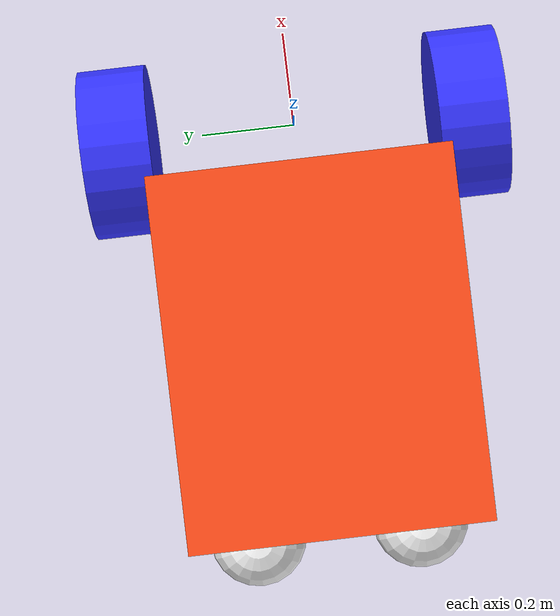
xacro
<?xml version="1.0"?>
<robot xmlns:xacro="http://www.ros.org/wiki/xacro" >

    <xacro:include filename="my_inertial_macros.xacro"/>

    <xacro:property name="chassis_length" value="0.80"/>
    <xacro:property name="chassis_width" value="0.65"/>
    <xacro:property name="chassis_height" value="0.31"/>
    <xacro:property name="chassis_mass" value="45.0"/>

    <xacro:property name="wheel_radius" value="0.19"/>
    <xacro:property name="wheel_thickness" value="0.15"/>
    <xacro:property name="wheel_mass" value="3.17"/>
    <xacro:property name="wheel_offset_x" value="0"/>
    <xacro:property name="wheel_offset_y" value="0.39"/>
    <xacro:property name="wheel_offset_z" value="0.16"/>

    <xacro:property name="caster_wheel_radius" value="0.11"/>
    <xacro:property name="caster_wheel_mass" value="1.5965"/>
    <xacro:property name="caster_wheel_offset_x" value="0.91"/>
    <xacro:property name="caster_wheel_offset_y" value="0.1875"/>
    <xacro:property name="caster_wheel_offset_z" value="0.24"/>

    <!-- UBAH BAGIAN BAWAH SESUAI DENGAN UPDATE PROPERTIES -->

    <material name="white">
        <color rgba="1 1 1 1" />
    </material>

    <material name="orange">
        <color rgba="1 0.3 0.1 1"/>
    </material>

    <material name="blue">
        <color rgba="0.2 0.2 1 1"/>
    </material>

    <material name="black">
        <color rgba="0 0 0 1"/>
    </material>

    <material name="red">
        <color rgba="1 0 0 1"/>
    </material>

    <!-- BASE LINK -->
    <link name="base_link"></link>

    <!-- BASE_FOOTPRINT LINK -->
    <joint name="base_footprint_joint" type="fixed">
        <parent link="base_link"/>
        <child link="base_footprint"/>
        <origin xyz="-0.46 0 ${-wheel_radius-wheel_offset_z}" rpy="0 0 0"/>
    </joint>

    <link name="base_footprint"></link>

    <!-- CHASSIS LINK -->
    <joint name="chassis_joint" type="fixed">
        <parent link="base_link"/>
        <child link="chassis"/>
        <origin xyz="-0.085 0 ${-wheel_offset_z}"/>
    </joint>

    <link name="chassis">
        <visual>
            <origin xyz="${-chassis_length/2} 0 ${chassis_height/2}"/>
            <geometry>
                <box size="${chassis_length} ${chassis_width} ${chassis_height}"/>
            </geometry>
            <material name="orange"/>
        </visual>
        <collision>
            <origin xyz="${-chassis_length/2} 0 ${chassis_height/2}"/>
            <geometry>
                <box size="${chassis_length} ${chassis_width} ${chassis_height}"/>
            </geometry>
        </collision>

        <xacro:inertial_box mass="${chassis_mass}" x="${chassis_length}" y="${chassis_width}" z="${chassis_height}">
            <origin xyz="${-chassis_length/2} 0 ${chassis_height/2}" rpy="0 0 0"/>
        </xacro:inertial_box>
    </link>

    <gazebo reference="chassis">
        <material>Gazebo/Orange</material>
    </gazebo>

    <!-- LEFT WHEEL LINK -->
    <joint name="left_wheel_joint" type="continuous">
        <parent link="base_link"/>
        <child link="left_wheel"/>
        <origin xyz="${wheel_offset_x} ${wheel_offset_y} ${-wheel_offset_z}" rpy="${-pi/2} 0 0" />
        <axis xyz="0 0 1"/>
    </joint>

    <link name="left_wheel">
        <visual>
            <geometry>
                <cylinder radius="${wheel_radius}" length="${wheel_thickness}"/>
            </geometry>
            <material name="blue"/>
        </visual>

        <collision>
            <geometry>
                <sphere radius="${wheel_radius}"/>
            </geometry>
        </collision>

        <xacro:inertial_cylinder mass="${wheel_mass}" length="${wheel_thickness}" radius="${wheel_radius}">
            <origin xyz="0 0 0" rpy="0 0 0"/>
        </xacro:inertial_cylinder>
    </link>

    <gazebo reference="left_wheel">
        <material>Gazebo/Blue</material>
    </gazebo>

    <!-- RIGHT WHEEL LINK -->
    <joint name="right_wheel_joint" type="continuous">
        <parent link="base_link"/>
        <child link="right_wheel"/>
        <origin xyz="${wheel_offset_x} ${-wheel_offset_y} ${-wheel_offset_z}" rpy="${pi/2} 0 0" />
        <axis xyz="0 0 -1"/>
    </joint>

    <link name="right_wheel">
        <visual>
            <geometry>
                <cylinder radius="${wheel_radius}" length="${wheel_thickness}"/>
            </geometry>
            <material name="blue"/>
        </visual>

        <collision>
            <geometry>
                <sphere radius="${wheel_radius}"/>
            </geometry>
        </collision>

        <xacro:inertial_cylinder mass="${wheel_mass}" length="${wheel_thickness}" radius="${wheel_radius}">
            <origin xyz="0 0 0" rpy="0 0 0"/>
        </xacro:inertial_cylinder>
    </link>

    <gazebo reference="right_wheel">
        <material>Gazebo/Blue</material>
    </gazebo>

    <!-- CASTER WHEEL 1 LINK -->
    <joint name="caster_wheel_joint1" type="fixed">
        <parent link="base_link"/>
        <child link="caster_wheel1"/>
        <origin xyz="${-caster_wheel_offset_x} ${caster_wheel_offset_y} ${-caster_wheel_offset_z}"/>
    </joint>

    <link name="caster_wheel1">
        <visual>
            <geometry>
                <sphere radius="${caster_wheel_radius}"/>
            </geometry>
            <material name="white"/>
        </visual>
        <collision>
            <geometry>
                <sphere radius="${caster_wheel_radius}"/>
            </geometry>
        </collision>

        <xacro:inertial_sphere mass="${caster_wheel_mass}" radius="${caster_wheel_radius}">
            <origin xyz="0 0 0" rpy="0 0 0"/>
        </xacro:inertial_sphere>
    </link>

    <!-- CASTER WHEEL 2 LINK -->
    <joint name="caster_wheel_joint2" type="fixed">
        <parent link="base_link"/>
        <child link="caster_wheel2"/>
        <origin xyz="${-caster_wheel_offset_x} ${-caster_wheel_offset_y} ${-caster_wheel_offset_z}"/>
    </joint>

    <link name="caster_wheel2">
        <visual>
            <geometry>
                <sphere radius="${caster_wheel_radius}"/>
            </geometry>
            <material name="white"/>
        </visual>
        <collision>
            <geometry>
                <sphere radius="${caster_wheel_radius}"/>
            </geometry>
        </collision>

        <xacro:inertial_sphere mass="${caster_wheel_mass}" radius="${caster_wheel_radius}">
            <origin xyz="0 0 0" rpy="0 0 0"/>
        </xacro:inertial_sphere>
    </link>

    <gazebo reference="caster_wheel1">
        <material>Gazebo/White</material>
        <mu1 value="0.001"/>
        <mu2 value="0.001"/>
    </gazebo>

    <gazebo reference="caster_wheel2">
        <material>Gazebo/White</material>
        <mu1 value="0.001"/>
        <mu2 value="0.001"/>
    </gazebo>

</robot>
